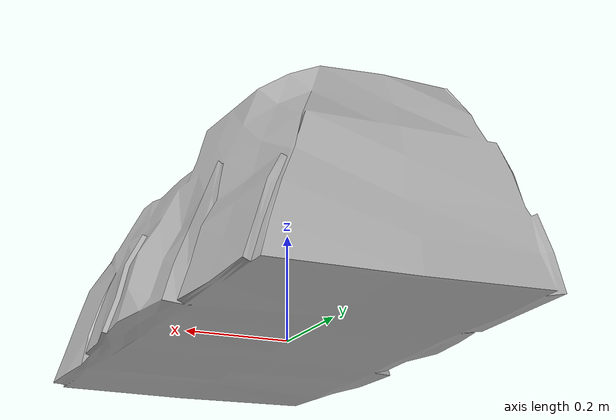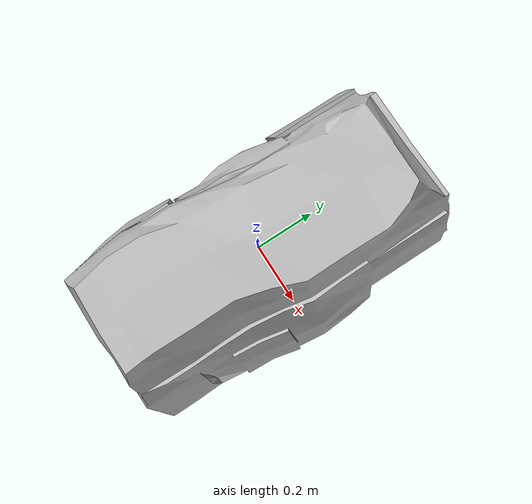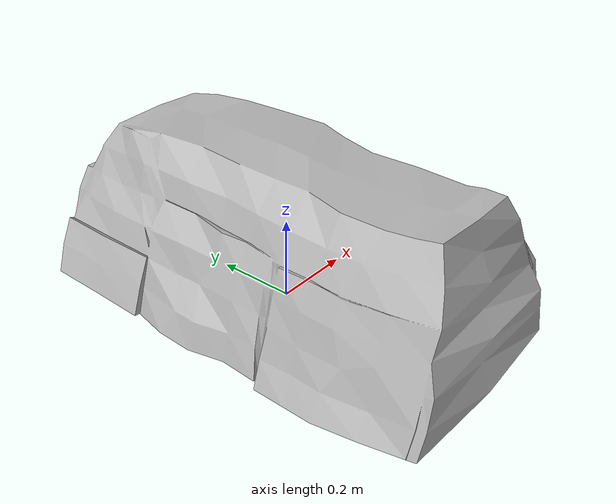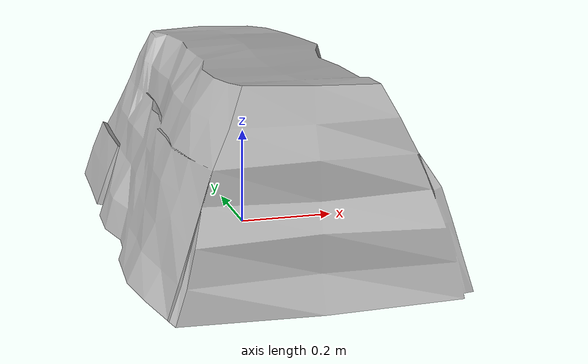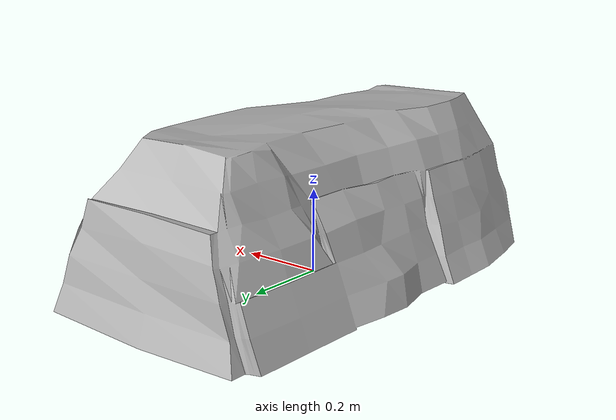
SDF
<?xml version='1.0'?>
<sdf version='1.6'>
  <model name='rock_barrier'>
    <static>true</static>
    <link name='link'>
      <pose>0 0 0 0 0 0</pose>
      <inertial>
        <mass>1</mass>
        <inertia>
          <ixx>0.166667</ixx>
          <ixy>0</ixy>
          <ixz>0</ixz>
          <iyy>0.166667</iyy>
          <iyz>0</iyz>
          <izz>0.166667</izz>
        </inertia>
      </inertial>
      <visual name='visual'>
        <pose>0 0 0 0 0 0</pose>
        <geometry>
          <mesh>
            <uri>model://rock_barrier/rock_barrier.stl</uri>
            <scale>1 1 1</scale>
          </mesh>
        </geometry>
        <material>
          <lighting>1</lighting>
          <script>
            <uri>model://rock_barrier</uri>
            <name>rock_barrier/Diffuse</name>
          </script>
        </material>
      </visual>
      <collision name='collision'>
        <laser_retro>0</laser_retro>
        <max_contacts>10</max_contacts>
        <pose>0 0 0 0 0 0</pose>
        <geometry>
          <mesh>
            <uri>model://rock_barrier/rock_barrier.stl</uri>
          </mesh>
        </geometry>
        <surface>
          <friction>
            <ode>
              <mu>1</mu>
              <mu2>1</mu2>
              <fdir1>0 0 0</fdir1>
              <slip1>0</slip1>
              <slip2>0</slip2>
            </ode>
            <torsional>
              <coefficient>1</coefficient>
              <patch_radius>0</patch_radius>
              <surface_radius>0</surface_radius>
              <use_patch_radius>1</use_patch_radius>
              <ode>
                <slip>0</slip>
              </ode>
            </torsional>
          </friction>
          <bounce>
            <restitution_coefficient>0</restitution_coefficient>
            <threshold>1e+06</threshold>
          </bounce>
          <contact>
            <collide_without_contact>0</collide_without_contact>
            <collide_without_contact_bitmask>1</collide_without_contact_bitmask>
            <collide_bitmask>1</collide_bitmask>
            <ode>
              <soft_cfm>0</soft_cfm>
              <soft_erp>0.2</soft_erp>
              <kp>1e+13</kp>
              <kd>1</kd>
              <max_vel>0.01</max_vel>
              <min_depth>0</min_depth>
            </ode>
          </contact>
        </surface>
      </collision>
    </link>
  </model>
</sdf>
